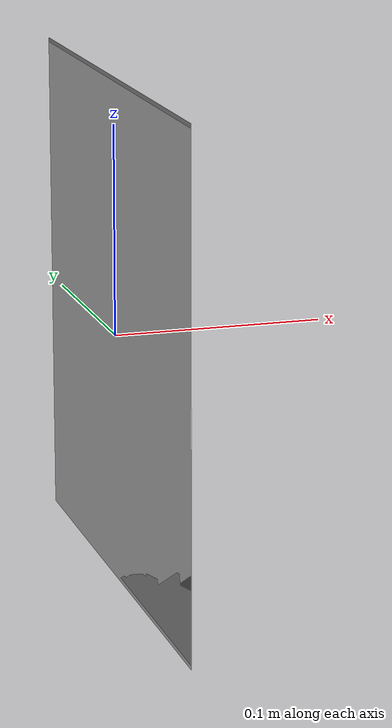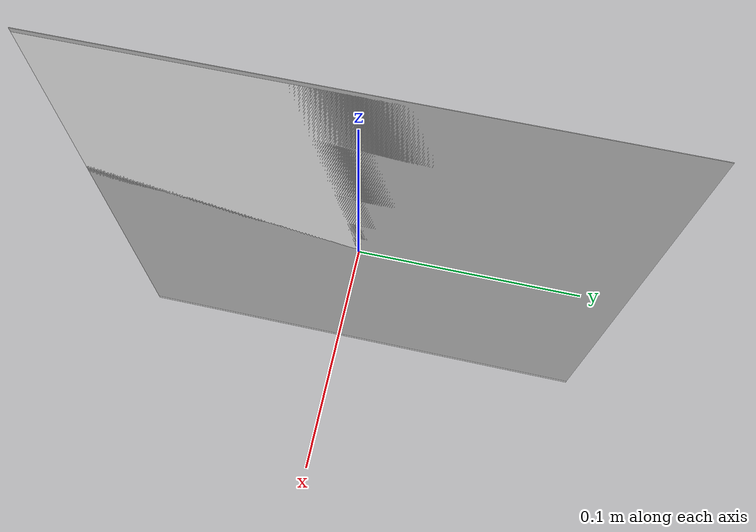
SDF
<?xml version='1.0'?>
<sdf version='1.6'>
  <model name='gauge_02'>
    <static>1</static>

    <link name='gauge_02_link'>
      <visual name="page_visual">
        <cast_shadows>false</cast_shadows>
        <pose>0 0 0.0    0 0 0</pose>
        <geometry>
          <plane>
            <normal>1 0 0</normal>
            <size>0.24 0.24</size>
          </plane>
        </geometry>
            <material>
                <script>
                    <uri>file://media/materials/scripts/gazebo.material</uri>
                    <name>Gazebo/White</name>
                </script>
            </material>
      </visual>

      <visual name="picture_visual">
        <cast_shadows>false</cast_shadows>
        <pose>0 0 0.002    0 0 0</pose>
        <geometry>
          <plane>
            <normal>1 0 0</normal>
            <size>0.24 0.24</size>
          </plane>
        </geometry>
        <material>
          <script>
            <uri>model://rs_gazebo/models/ss_hq4/gauge_02/materials/scripts</uri>
            <uri>model://rs_gazebo/models/ss_hq4/gauge_02/materials/textures</uri>
            <name>gauge_02</name>
          </script>
        </material>
      </visual>

    </link>
    <allow_auto_disable>1</allow_auto_disable>
  </model>
</sdf>
